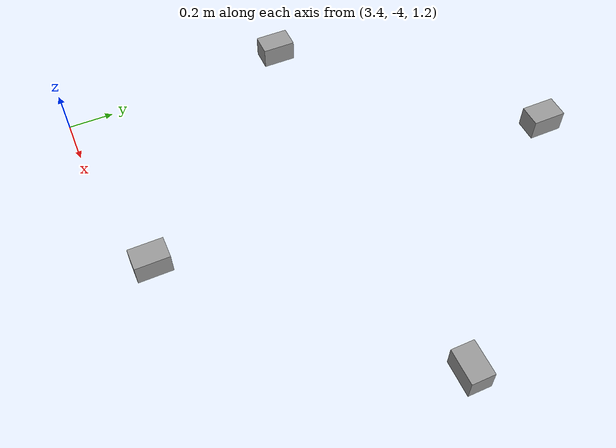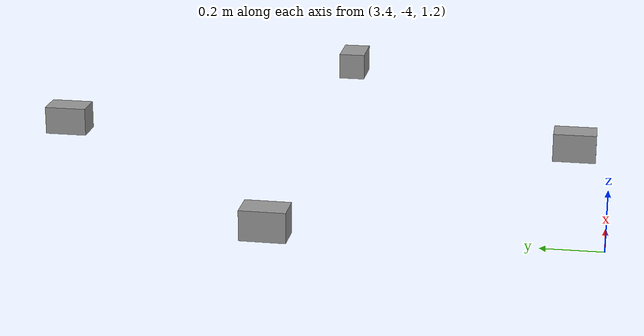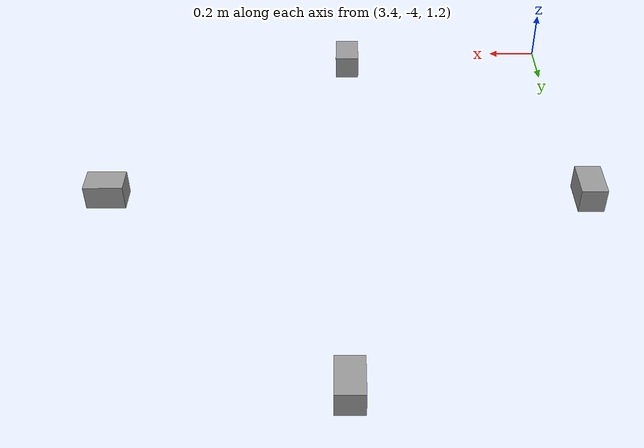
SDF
<?xml version='1.0'?>
<sdf version='1.7'>
  <model name='map'>
    <pose>5 -1.9775 0 0 -0 0</pose>
    <link name='Wall_0'>
      <collision name='Wall_0_Collision'>
        <geometry>
          <box>
            <size>0.1 0.15 0.1</size>
          </box>
        </geometry>
        <pose>0 0 1.25 0 -0 0</pose>
      </collision>
      <visual name='Wall_0_Visual'>
        <pose>0 0 1.25 0 -0 0</pose>
        <geometry>
          <box>
            <size>0.1 0.15 0.1</size>
          </box>
        </geometry>
        <material>
          <script>
            <uri>file://media/materials/scripts/gazebo.material</uri>
            <name>Gazebo/Grey</name>
          </script>
          <ambient>1 1 1 1</ambient>
        </material>
        <meta>
          <layer>0</layer>
        </meta>
      </visual>
      <pose>-1.6475 -0.9775 0 0 -0 0</pose>
    </link>
    <link name='Wall_1'>
      <collision name='Wall_1_Collision'>
        <geometry>
          <box>
            <size>0.1 0.15 .1</size>
          </box>
        </geometry>
        <pose>0 0 1.25 0 -0 0</pose>
      </collision>
      <visual name='Wall_1_Visual'>
        <pose>0 0 1.25 0 -0 0</pose>
        <geometry>
          <box>
            <size>0.1 0.15 .1</size>
          </box>
        </geometry>
        <material>
          <script>
            <uri>file://media/materials/scripts/gazebo.material</uri>
            <name>Gazebo/Grey</name>
          </script>
          <ambient>1 1 1 1</ambient>
        </material>
        <meta>
          <layer>0</layer>
        </meta>
      </visual>
      <pose>-0.7225 -1.9025 0 0 -0 0</pose>
    </link>
    <link name='Wall_2'>
      <collision name='Wall_2_Collision'>
        <geometry>
          <box>
            <size>0.1 0.15 .1</size>
          </box>
        </geometry>
        <pose>0 0 1.25 0 -0 0</pose>
      </collision>
      <visual name='Wall_2_Visual'>
        <pose>0 0 1.25 0 -0 0</pose>
        <geometry>
          <box>
            <size>0.1 0.15 .1</size>
          </box>
        </geometry>
        <material>
          <script>
            <uri>file://media/materials/scripts/gazebo.material</uri>
            <name>Gazebo/Grey</name>
          </script>
          <ambient>1 1 1 1</ambient>
        </material>
        <meta>
          <layer>0</layer>
        </meta>
      </visual>
      <pose>0.2025 -0.9775 0 0 -0 1.5708</pose>
    </link>
    <link name='Wall_3'>
      <collision name='Wall_3_Collision'>
        <geometry>
          <box>
            <size>0.1 0.15 .5</size>
          </box>
        </geometry>
        <pose>0 0 1.25 0 -0 0</pose>
      </collision>
      <visual name='Wall_3_Visual'>
        <pose>0 0 1.25 0 -0 0</pose>
        <geometry>
          <box>
            <size>0.1 0.15 .1</size>
          </box>
        </geometry>
        <material>
          <script>
            <uri>file://media/materials/scripts/gazebo.material</uri>
            <name>Gazebo/Grey</name>
          </script>
          <ambient>1 1 1 1</ambient>
        </material>
        <meta>
          <layer>0</layer>
        </meta>
      </visual>
      <pose>-0.7225 -0.0525 0 0 -0 3.14159</pose>
    </link>
    <static>1</static>
  </model>
</sdf>
